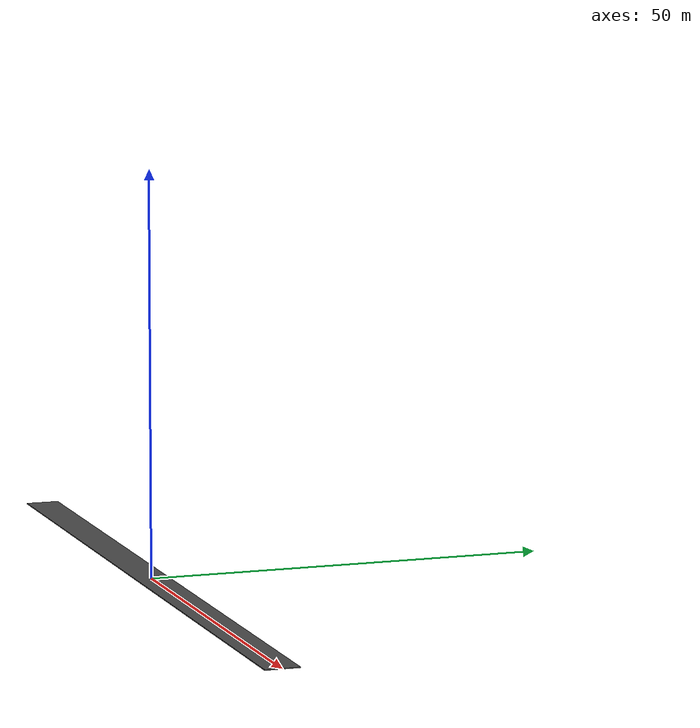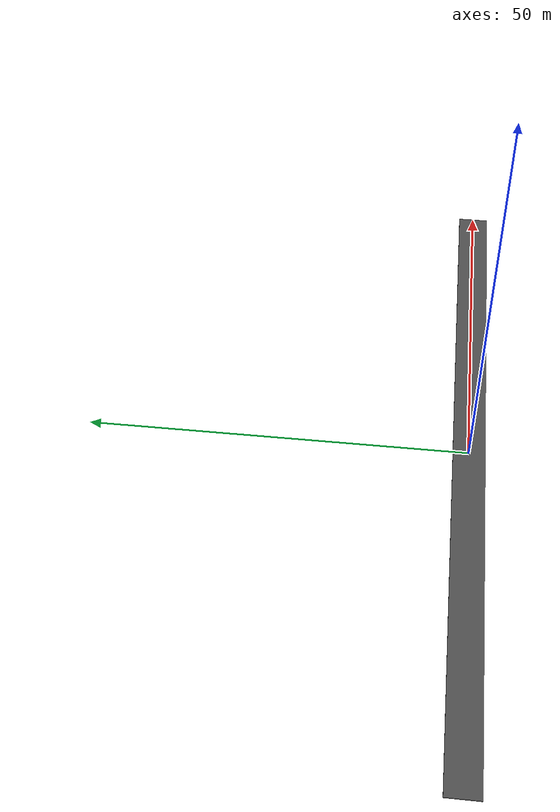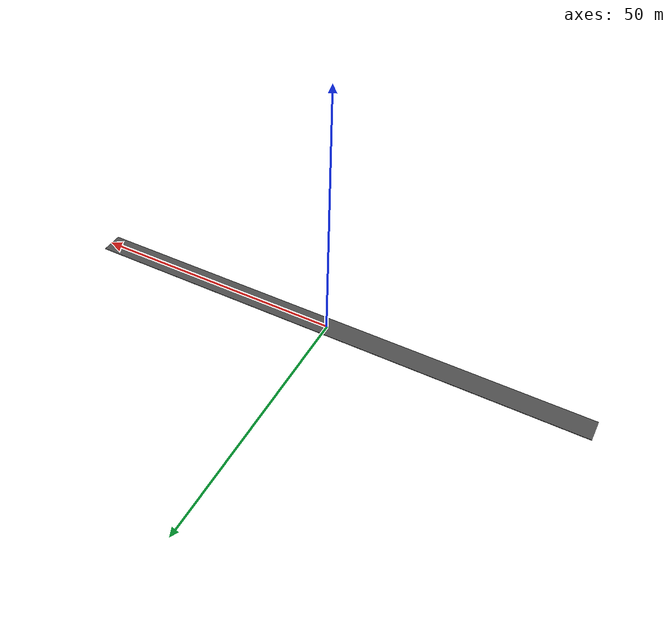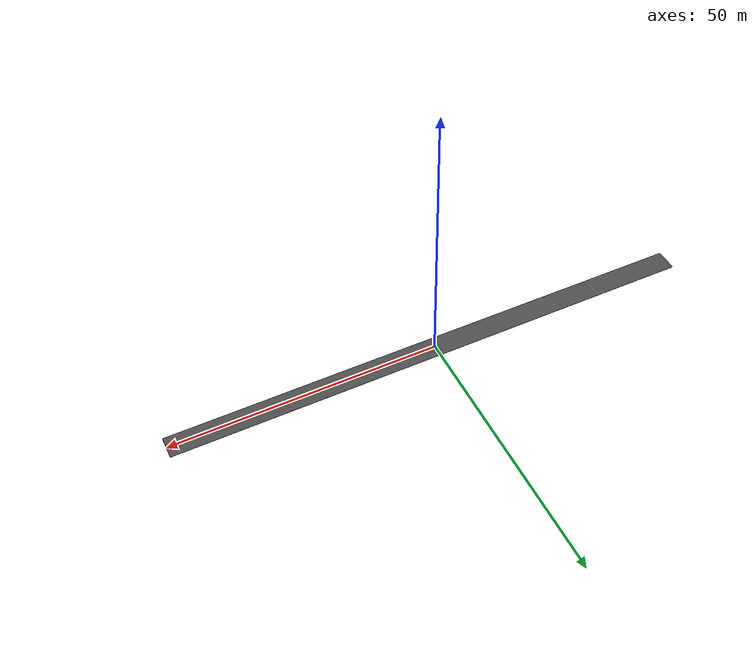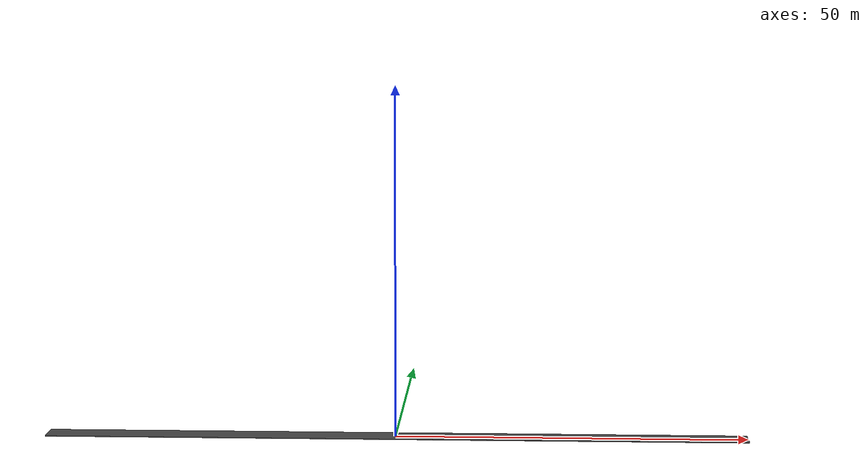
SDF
<?xml version="1.0" ?>
<sdf version="1.4">
  <model name="(DS) Straight Road - 100m">
    <static>true</static>
    <link name="link">
      <inertial>
        <pose>0 0 0 0 0 0</pose>
        <mass>1</mass>
        <inertia>
          <ixx>1</ixx>
          <iyy>1</iyy>
          <izz>1</izz>
          <ixy>0</ixy>
          <ixz>0</ixz>
        </inertia>
      </inertial>
      <collision name="collision">
        <geometry>
          <mesh>
            <uri>model://ds_straight_road_100m/meshes/ImageToStl.com_10042.dae</uri>
          </mesh>
        </geometry>
      </collision>
      <visual name="visual">
        <geometry>
          <mesh>
            <uri>model://ds_straight_road_100m/meshes/ImageToStl.com_10042.dae</uri>
          </mesh>
        </geometry>
        <material>
          <script>
            <uri>file://media/materials/scripts/ds_sim.material</uri>
            <name>DSSim/Road</name>
          </script>
        </material>
      </visual>
    </link>
  </model>
</sdf>
